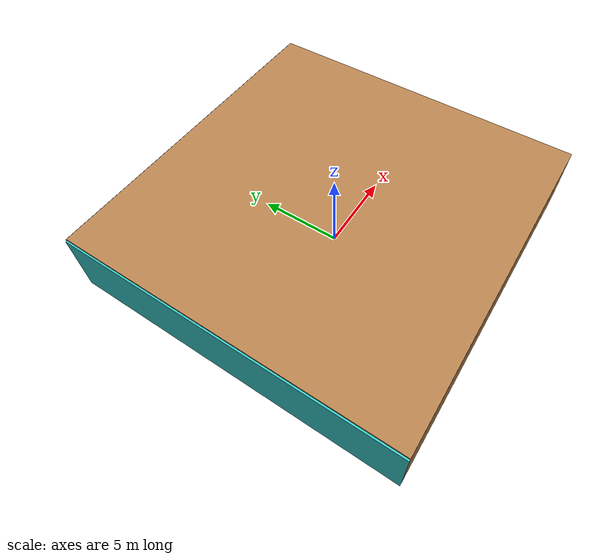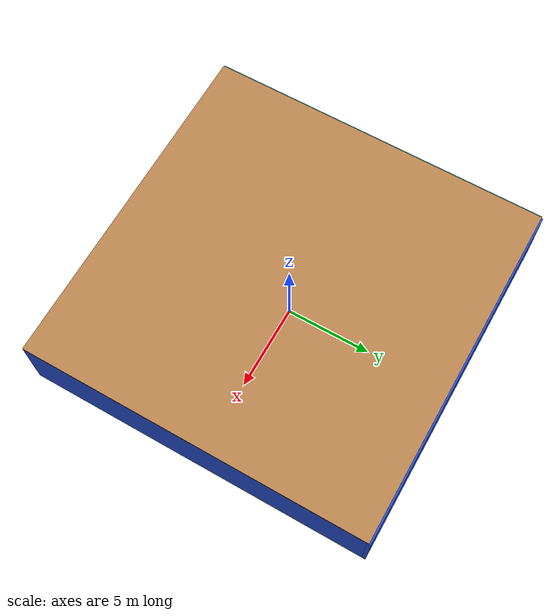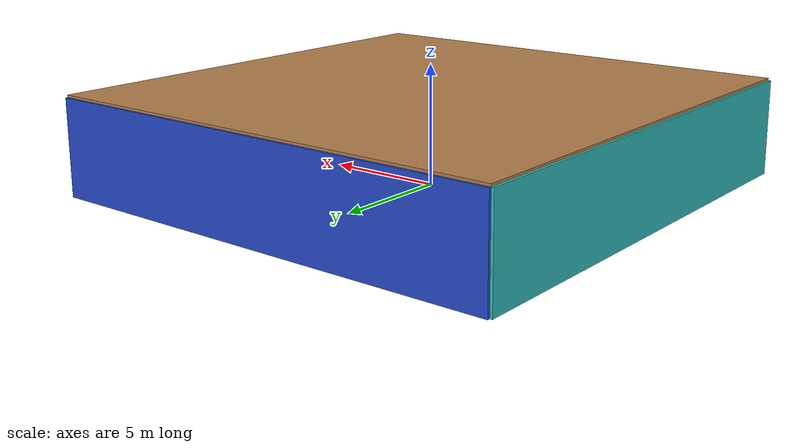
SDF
<sdf version="1.4">
 <world name="default">
  <physics type="ode">
   <max_step_size>0.001</max_step_size>
   <real_time_factor>1</real_time_factor>
   <real_time_update_rate>1000</real_time_update_rate>
   <gravity>0 0 -9.8</gravity>
  </physics>
  <scene><ambient>0.4 0.4 0.4 1</ambient><background>0.7 0.7 0.7 1</background><shadows>1</shadows></scene>
  <model name="Surrounding">
   <static>1</static>
   <link name="Ceiling">
    <collision name="Ceiling_Collision"><geometry><box><size>20 20 0.1</size></box></geometry></collision>
    <visual name="Ceiling_Visual">
     <geometry><box><size>20 20 0.1</size></box></geometry>
     <material>
      <script><uri>file://media/materials/scripts/gazebo.material</uri><name>Gazebo/WoodPallet</name></script>
     </material>
    </visual>
    <pose>0 0 4.05 0 0 0</pose>
   </link>
   <link name="Wall_South">
    <collision name="Wall_South_Collision">
     <geometry><box><size>20 0 4</size></box></geometry>
     <pose>0 0 2 0 -0 0</pose>
    </collision>
    <visual name="Wall_South_Visual">
     <pose>0 0 2 0 -0 0</pose>
     <geometry><box><size>20 0 4</size></box></geometry>
     <material>
      <script><uri>file://media/materials/scripts/gazebo.material</uri><name>Gazebo/WoodFloor</name></script>
     </material>
    </visual>
    <velocity_decay><linear>0</linear><angular>0</angular></velocity_decay>
    <pose>0 -10 0 0 -0 0</pose>
   </link>
   <link name="Wall_East">
    <collision name="Wall_21_Collision">
     <geometry><box><size>20 0 4</size></box></geometry>
     <pose>0 0 2 0 -0 0</pose>
    </collision>
    <visual name="Wall_21_Visual">
     <pose>0 0 2 0 -0 0</pose>
     <geometry><box><size>20 0 4</size></box></geometry>
     <material>
      <script><uri>file://media/materials/scripts/gazebo.material</uri><name>Gazebo/BlueGlow</name></script>
     </material>
    </visual>
    <velocity_decay><linear>0</linear><angular>0</angular></velocity_decay>
    <pose>10 0 0 0 -0 1.5708</pose>
   </link>
   <link name="Wall_North">
    <collision name="Wall_22_Collision">
     <geometry><box><size>20 0.2 4</size></box></geometry>
     <pose>0 0 2 0 -0 0</pose>
    </collision>
    <visual name="Wall_22_Visual">
     <pose>0 0 2 0 -0 0</pose>
     <geometry><box><size>20 0.2 4</size></box></geometry>
     <material>
      <script><uri>file://media/materials/scripts/gazebo.material</uri><name>Gazebo/Blue</name></script>
     </material>
    </visual>
    <velocity_decay><linear>0</linear><angular>0</angular></velocity_decay>
    <pose>0 10 0 0 -0 0</pose>
   </link>
   <link name="Wall_West">
    <collision name="Wall_23_Collision">
     <geometry><box><size>20 0.2 4</size></box></geometry>
     <pose>0 0 2 0 -0 0</pose>
    </collision>
    <visual name="Wall_23_Visual">
     <pose>0 0 2 0 -0 0</pose>
     <geometry><box><size>20 0.2 4</size></box></geometry>
     <material>
      <script>
       <uri>file://media/materials/scripts/gazebo.material</uri>
       <name>Gazebo/TurquoiseGlowOutline</name>
      </script>
     </material>
    </visual>
    <velocity_decay><linear>0</linear><angular>0</angular></velocity_decay>
    <pose>-10 0 0 0 0 -1.5708</pose>
   </link>
   <link name="Ground_link">
    <collision name="collision">
     <pose>0 0 .05 0 -0 0</pose>
     <geometry><box><size>20 20 0.1</size></box></geometry>
    </collision>
    <visual name="visual">
     <pose>0 0 .05 0 -0 0</pose>
     <geometry><box><size>20 20 0.1</size></box></geometry>
     <material>
      <script><uri>file://media/materials/scripts/gazebo.material</uri><name>Gazebo/FlatBlack</name></script>
     </material>
    </visual>
   </link>
   <static>1</static>
  </model>
  <spherical_coordinates>
   <surface_model>EARTH_WGS84</surface_model>
   <latitude_deg>0</latitude_deg>
   <longitude_deg>0</longitude_deg>
   <elevation>0</elevation>
   <heading_deg>0</heading_deg>
  </spherical_coordinates>
  <light name="lightball_0" type="diffuse">
   <diffuse>0.8 0.8 0.8 1</diffuse>
   <specular>0.2 0.2 0.2 1</specular>
   <attenuation>
    <range>100</range>
    <constant>0.7</constant>
    <linear>0.01</linear>
    <quadratic>0.001</quadratic>
   </attenuation>
   <direction>-0.5 0.1 -0.9</direction>
   <pose>6.29246132997 9.76273060771 0.519138506021 0 0 0</pose>
  </light>
  <light name="lightball_1" type="diffuse">
   <diffuse>0.8 0.8 0.8 1</diffuse>
   <specular>0.2 0.2 0.2 1</specular>
   <attenuation>
    <range>100</range>
    <constant>0.7</constant>
    <linear>0.01</linear>
    <quadratic>0.001</quadratic>
   </attenuation>
   <direction>-0.5 0.1 -0.9</direction>
   <pose>0.607991973183 5.60154290386 0.685482212117 0 0 0</pose>
  </light>
  <light name="lightball_2" type="diffuse">
   <diffuse>0.8 0.8 0.8 1</diffuse>
   <specular>0.2 0.2 0.2 1</specular>
   <attenuation>
    <range>100</range>
    <constant>0.7</constant>
    <linear>0.01</linear>
    <quadratic>0.001</quadratic>
   </attenuation>
   <direction>-0.5 0.1 -0.9</direction>
   <pose>3.70988913448 -4.57422659871 2.459404421 0 0 0</pose>
  </light>
  <light name="lightball_3" type="diffuse">
   <diffuse>0.8 0.8 0.8 1</diffuse>
   <specular>0.2 0.2 0.2 1</specular>
   <attenuation>
    <range>100</range>
    <constant>0.7</constant>
    <linear>0.01</linear>
    <quadratic>0.001</quadratic>
   </attenuation>
   <direction>-0.5 0.1 -0.9</direction>
   <pose>7.20158664912 -4.863478092 1.0339835601 0 0 0</pose>
  </light>
  <light name="lightball_4" type="diffuse">
   <diffuse>0.8 0.8 0.8 1</diffuse>
   <specular>0.2 0.2 0.2 1</specular>
   <attenuation>
    <range>100</range>
    <constant>0.7</constant>
    <linear>0.01</linear>
    <quadratic>0.001</quadratic>
   </attenuation>
   <direction>-0.5 0.1 -0.9</direction>
   <pose>-0.905213392009 -9.28576064352 2.30987244154 0 0 0</pose>
  </light>
  <light name="lightball_5" type="diffuse">
   <diffuse>0.8 0.8 0.8 1</diffuse>
   <specular>0.2 0.2 0.2 1</specular>
   <attenuation>
    <range>100</range>
    <constant>0.7</constant>
    <linear>0.01</linear>
    <quadratic>0.001</quadratic>
   </attenuation>
   <direction>-0.5 0.1 -0.9</direction>
   <pose>5.18457334958 -4.6355720779 1.51825582704 0 0 0</pose>
  </light>
  <light name="lightball_6" type="diffuse">
   <diffuse>0.8 0.8 0.8 1</diffuse>
   <specular>0.2 0.2 0.2 1</specular>
   <attenuation>
    <range>100</range>
    <constant>0.7</constant>
    <linear>0.01</linear>
    <quadratic>0.001</quadratic>
   </attenuation>
   <direction>-0.5 0.1 -0.9</direction>
   <pose>-8.40133762191 3.28219100596 0.791116291665 0 0 0</pose>
  </light>
  <light name="lightball_7" type="diffuse">
   <diffuse>0.8 0.8 0.8 1</diffuse>
   <specular>0.2 0.2 0.2 1</specular>
   <attenuation>
    <range>100</range>
    <constant>0.7</constant>
    <linear>0.01</linear>
    <quadratic>0.001</quadratic>
   </attenuation>
   <direction>-0.5 0.1 -0.9</direction>
   <pose>-9.97697000659 0.715308653252 2.36939600496 0 0 0</pose>
  </light>
  <light name="lightball_8" type="diffuse">
   <diffuse>0.8 0.8 0.8 1</diffuse>
   <specular>0.2 0.2 0.2 1</specular>
   <attenuation>
    <range>100</range>
    <constant>0.7</constant>
    <linear>0.01</linear>
    <quadratic>0.001</quadratic>
   </attenuation>
   <direction>-0.5 0.1 -0.9</direction>
   <pose>0.790500471671 -6.41325111574 2.11800996155 0 0 0</pose>
  </light>
  <light name="lightball_9" type="diffuse">
   <diffuse>0.8 0.8 0.8 1</diffuse>
   <specular>0.2 0.2 0.2 1</specular>
   <attenuation>
    <range>100</range>
    <constant>0.7</constant>
    <linear>0.01</linear>
    <quadratic>0.001</quadratic>
   </attenuation>
   <direction>-0.5 0.1 -0.9</direction>
   <pose>-8.92975667922 -9.86668154811 0.605578594351 0 0 0</pose>
  </light>
  <light name="lightball_10" type="diffuse">
   <diffuse>0.8 0.8 0.8 1</diffuse>
   <specular>0.2 0.2 0.2 1</specular>
   <attenuation>
    <range>100</range>
    <constant>0.7</constant>
    <linear>0.01</linear>
    <quadratic>0.001</quadratic>
   </attenuation>
   <direction>-0.5 0.1 -0.9</direction>
   <pose>2.85816531439 -3.61388024601 2.70025666457 0 0 0</pose>
  </light>
  <light name="lightball_11" type="diffuse">
   <diffuse>0.8 0.8 0.8 1</diffuse>
   <specular>0.2 0.2 0.2 1</specular>
   <attenuation>
    <range>100</range>
    <constant>0.7</constant>
    <linear>0.01</linear>
    <quadratic>0.001</quadratic>
   </attenuation>
   <direction>-0.5 0.1 -0.9</direction>
   <pose>4.32417781492 -1.41598256763 0.589031605813 0 0 0</pose>
  </light>
  <light name="lightball_12" type="diffuse">
   <diffuse>0.8 0.8 0.8 1</diffuse>
   <specular>0.2 0.2 0.2 1</specular>
   <attenuation>
    <range>100</range>
    <constant>0.7</constant>
    <linear>0.01</linear>
    <quadratic>0.001</quadratic>
   </attenuation>
   <direction>-0.5 0.1 -0.9</direction>
   <pose>3.59316412923 6.35685828711 2.18047472072 0 0 0</pose>
  </light>
  <include><uri>model://cabinet</uri><pose>-6.81527277595 -3.3734858823 0 0 0 0.384921870378</pose></include>
  <include><uri>model://cabinet</uri><pose>-3.72500094813 -8.21817857928 0 0 0 0.740652688577</pose></include>
  <include>
   <uri>model://construction_cone</uri>
   <pose>0.443066665073 -3.49874117067 0 0 0 0.478534441553</pose>
  </include>
  <include><uri>model://cabinet</uri><pose>5.32431794011 0.408047589019 0 0 0 0.785362675419</pose></include>
  <include>
   <uri>model://robocup_3Dsim_goal</uri>
   <pose>7.21455458421 -6.8542288336 0 0 0 2.51414853558</pose>
  </include>
 </world>
</sdf>

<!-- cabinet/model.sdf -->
<sdf version="1.5">
  <model name="cabinet">
    <static>true</static>
    <link name="cabinet_bottom_plate">
      <inertial>
        <pose>0 0 -1 0 0 0</pose>
        <inertia>
          <ixx>2.050000</ixx>
          <ixy>0</ixy>
          <ixz>0</ixz>
          <iyy>2.050000</iyy>
          <iyz>0</iyz>
          <izz>2.050000</izz>
        </inertia>
        <mass>25.000000</mass>
      </inertial>
      <collision name="cabinet_bottom_plate_geom">
        <pose>0 0 0.010000 0 0 0</pose>
        <geometry>
          <box>
            <size>0.450000 0.450000 0.020000</size>
          </box>
        </geometry>
      </collision>
      <visual name="cabinet_bottom_plate_geom_visual">
        <pose>0 0 0.010000 0 0 0</pose>
        <geometry>
          <box>
            <size>0.450000 0.450000 0.020000</size>
          </box>
        </geometry>
        <material>
          <script>
            <uri>model://media/materials/scripts/gazebo.material</uri>
            <name>Gazebo/Wood</name>
          </script>
        </material>
      </visual>
      <collision name="cabinet_bottom_plate_geom_cabinet_back_plate">
        <pose>0.235000 0 0.510000 0 0 0</pose>
        <geometry>
          <box>
            <size>0.020000 0.450000 1.020000</size>
          </box>
        </geometry>
      </collision>
      <visual name="cabinet_bottom_plate_geom_cabinet_back_plate_visual">
        <pose>0.235000 0 0.510000 0 0 0</pose>
        <geometry>
          <box>
            <size>0.020000 0.450000 1.020000</size>
          </box>
        </geometry>
        <material>
          <script>
            <uri>model://media/materials/scripts/gazebo.material</uri>
            <name>Gazebo/Wood</name>
          </script>
        </material>
      </visual>
      <collision name="cabinet_bottom_plate_geom_cabinet_left_plate">
        <pose>0 0.235000 0.510000 0 0 0</pose>
        <geometry>
          <box>
            <size>0.450000 0.020000 1.020000</size>
          </box>
        </geometry>
      </collision>
      <visual name="cabinet_bottom_plate_geom_cabinet_left_plate_visual">
        <pose>0 0.235000 0.510000 0 0 0</pose>
        <geometry>
          <box>
            <size>0.450000 0.020000 1.020000</size>
          </box>
        </geometry>
        <material>
          <script>
            <uri>model://media/materials/scripts/gazebo.material</uri>
            <name>Gazebo/Wood</name>
          </script>
        </material>
      </visual>
      <collision name="cabinet_bottom_plate_geom_cabinet_middle_plate">
        <pose>0 0 0.510000 0 0 0</pose>
        <geometry>
          <box>
            <size>0.450000 0.450000 0.020000</size>
          </box>
        </geometry>
      </collision>
      <visual name="cabinet_bottom_plate_geom_cabinet_middle_plate_visual">
        <pose>0 0 0.510000 0 0 0</pose>
        <geometry>
          <box>
            <size>0.450000 0.450000 0.020000</size>
          </box>
        </geometry>
        <material>
          <script>
            <uri>model://media/materials/scripts/gazebo.material</uri>
            <name>Gazebo/Wood</name>
          </script>
        </material>
      </visual>
      <collision name="cabinet_bottom_plate_geom_cabinet_right_plate">
        <pose>0 -0.235000 0.510000 0 0 0</pose>
        <geometry>
          <box>
            <size>0.450000 0.020000 1.020000</size>
          </box>
        </geometry>
      </collision>
      <visual name="cabinet_bottom_plate_geom_cabinet_right_plate_visual">
        <pose>0 -0.235000 0.510000 0 0 0</pose>
        <geometry>
          <box>
            <size>0.450000 0.020000 1.020000</size>
          </box>
        </geometry>
        <material>
          <script>
            <uri>model://media/materials/scripts/gazebo.material</uri>
            <name>Gazebo/Wood</name>
          </script>
        </material>
      </visual>
      <collision name="cabinet_bottom_plate_geom_cabinet_top_plate">
        <pose>0 0 1.010000 0 0 0</pose>
        <geometry>
          <box>
            <size>0.450000 0.450000 0.020000</size>
          </box>
        </geometry>
      </collision>
      <visual name="cabinet_bottom_plate_geom_cabinet_top_plate_visual">
        <pose>0 0 1.010000 0 0 0</pose>
        <geometry>
          <box>
            <size>0.450000 0.450000 0.020000</size>
          </box>
        </geometry>
        <material>
          <script>
            <uri>model://media/materials/scripts/gazebo.material</uri>
            <name>Gazebo/Wood</name>
          </script>
        </material>
      </visual>
    </link>
  </model>
</sdf>

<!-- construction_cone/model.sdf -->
<sdf version="1.5">
  <model name="Construction Cone">
    <link name="link">
      <collision name="collision">
        <geometry>
          <mesh>
            <scale>10 10 10</scale>
            <uri>file://isr-testbed/construction_cone/meshes/construction_cone.dae</uri>
          </mesh>
        </geometry>
      </collision>
      <visual name="visual">
        <geometry>
          <mesh>
            <scale>10 10 10</scale>
            <uri>file://isr-testbed/construction_cone/meshes/construction_cone.dae</uri>
          </mesh>
        </geometry>
      </visual>
    </link>
  </model>
</sdf>

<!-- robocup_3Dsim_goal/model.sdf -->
<sdf version="1.5">
  <model name="robocup_3d_goal">
    <static>true</static>
    <link name="left_post">
      <pose>0 1.05 0.45 0 0 0</pose>
      <collision name="collision">
        <geometry>
          <cylinder>
            <radius>0.05</radius>
            <length>0.9</length>
          </cylinder>
        </geometry>
      </collision>
      <visual name="visual">
        <geometry>
          <cylinder>
            <radius>0.05</radius>
            <length>0.9</length>
          </cylinder>
        </geometry>
        <material>
          <script>
            <uri>file://media/materials/scripts/gazebo.material</uri>
            <name>Gazebo/ZincYellow</name>
          </script>
        </material>
      </visual>
    </link>
    <link name="left_support_horiz_lower">
      <pose>0.30 1.05 0.01 0 0 0</pose>
      <collision name="collision">
        <geometry>
          <box>
            <size>0.50 0.02 0.02</size>
          </box>
        </geometry>
      </collision>
      <visual name="visual">
        <geometry>
          <box>
            <size>0.50 0.02 0.02</size>
          </box>
        </geometry>
        <material>
          <script>
            <uri>file://media/materials/scripts/gazebo.material</uri>
            <name>Gazebo/White</name>
          </script>
        </material>
      </visual>
    </link>
    <link name="left_support_horiz_upper">
      <pose>0.30 1.05 0.79 0 0 0</pose>
      <collision name="collision">
        <geometry>
          <box>
            <size>0.50 0.02 0.02</size>
          </box>
        </geometry>
      </collision>
      <visual name="visual">
        <geometry>
          <box>
            <size>0.50 0.02 0.02</size>
          </box>
        </geometry>
        <material>
          <script>
            <uri>file://media/materials/scripts/gazebo.material</uri>
            <name>Gazebo/White</name>
          </script>
        </material>
      </visual>
    </link>
    <link name="left_support_vertical">
      <pose>0.56 1.05 0.4 0 1.5708 0</pose>
      <collision name="collision">
        <geometry>
          <box>
            <size>0.80 0.02 0.02</size>
          </box>
        </geometry>
      </collision>
      <visual name="visual">
        <geometry>
          <box>
            <size>0.80 0.02 0.02</size>
          </box>
        </geometry>
        <material>
          <script>
            <uri>file://media/materials/scripts/gazebo.material</uri>
            <name>Gazebo/White</name>
          </script>
        </material>
      </visual>
    </link>
    <link name="right_support_horiz_lower">
      <pose>0.30 -1.05 0.01 0 0 0</pose>
      <collision name="collision">
        <geometry>
          <box>
            <size>0.50 0.02 0.02</size>
          </box>
        </geometry>
      </collision>
      <visual name="visual">
        <geometry>
          <box>
            <size>0.50 0.02 0.02</size>
          </box>
        </geometry>
        <material>
          <script>
            <uri>file://media/materials/scripts/gazebo.material</uri>
            <name>Gazebo/White</name>
          </script>
        </material>
      </visual>
    </link>
    <link name="right_support_horiz_upper">
      <pose>0.30 -1.05 0.79 0 0 0</pose>
      <collision name="collision">
        <geometry>
          <box>
            <size>0.50 0.02 0.02</size>
          </box>
        </geometry>
      </collision>
      <visual name="visual">
        <geometry>
          <box>
            <size>0.50 0.02 0.02</size>
          </box>
        </geometry>
        <material>
          <script>
            <uri>file://media/materials/scripts/gazebo.material</uri>
            <name>Gazebo/White</name>
          </script>
        </material>
      </visual>
    </link>
    <link name="right_support_vertical">
      <pose>0.56 -1.05 0.4 0 1.5708 0</pose>
      <collision name="collision">
        <geometry>
          <box>
            <size>0.80 0.02 0.02</size>
          </box>
        </geometry>
      </collision>
      <visual name="visual">
        <geometry>
          <box>
            <size>0.80 0.02 0.02</size>
          </box>
        </geometry>
        <material>
          <script>
            <uri>file://media/materials/scripts/gazebo.material</uri>
            <name>Gazebo/White</name>
          </script>
        </material>
      </visual>
    </link>
    <link name="center_support_horiz_lower">
      <pose>0.56 0 0.01 0 1.5708 0</pose>
      <collision name="collision">
        <geometry>
          <box>
            <size>0.02 2.08 0.02</size>
          </box>
        </geometry>
      </collision>
      <visual name="visual">
        <geometry>
          <box>
            <size>0.02 2.08 0.02</size>
          </box>
        </geometry>
        <material>
          <script>
            <uri>file://media/materials/scripts/gazebo.material</uri>
            <name>Gazebo/White</name>
          </script>
        </material>
      </visual>
    </link>
    <link name="center_support_horiz_upper">
      <pose>0.56 0 0.79 0 1.5708 0</pose>
      <collision name="collision">
        <geometry>
          <box>
            <size>0.02 2.08 0.02</size>
          </box>
        </geometry>
      </collision>
      <visual name="visual">
        <geometry>
          <box>
            <size>0.02 2.08 0.02</size>
          </box>
        </geometry>
        <material>
          <script>
            <uri>file://media/materials/scripts/gazebo.material</uri>
            <name>Gazebo/White</name>
          </script>
        </material>
      </visual>
    </link>
    <link name="right_post">
      <pose>0 -1.05 0.45 0 0 0</pose>
      <collision name="collision">
        <geometry>
          <cylinder>
            <radius>0.05</radius>
            <length>0.9</length>
          </cylinder>
        </geometry>
      </collision>
      <visual name="visual">
        <geometry>
          <cylinder>
            <radius>0.05</radius>
            <length>0.9</length>
          </cylinder>
        </geometry>
        <material>
          <script>
            <uri>file://media/materials/scripts/gazebo.material</uri>
            <name>Gazebo/ZincYellow</name>
          </script>
        </material>
      </visual>
    </link>
    <link name="crossbar">
      <pose>0 0 0.85 1.57 1.57 0</pose>
      <collision name="collision">
        <geometry>
          <cylinder>
            <radius>0.05</radius>
            <length>2.0</length>
          </cylinder>
        </geometry>
      </collision>
      <visual name="visual">
        <geometry>
          <cylinder>
            <radius>0.05</radius>
            <length>2.0</length>
          </cylinder>
        </geometry>
        <material>
          <script>
            <uri>file://media/materials/scripts/gazebo.material</uri>
            <name>Gazebo/ZincYellow</name>
          </script>
        </material>
      </visual>
    </link>
    <link name="center_net">
      <pose>0.56 0 0.40 0 0 0</pose>
      <collision name="collision">
        <geometry>
          <box>
            <size>0.01 2.1 0.80</size>
          </box>
        </geometry>
      </collision>
      <visual name="visual">
        <geometry>
          <box>
            <size>0.01 2.1 0.80</size>
          </box>
        </geometry>
        <material>
          <script>
            <uri>model://../model_source/models/robocup09_spl_field/materials/scripts/</uri>
            <uri>model://../model_source/models/robocup09_spl_field/materials/textures/</uri>
            <name>RoboCup/Net</name>
          </script>
        </material>
      </visual>
    </link>
    <link name="left_net">
      <pose>0.30 1.05 0.40 0 0 0</pose>
      <collision name="collision">
        <geometry>
          <box>
            <size>0.50 0.01 0.76</size>
          </box>
        </geometry>
      </collision>
      <visual name="visual">
        <geometry>
          <box>
            <size>0.50 0.01 0.76</size>
          </box>
        </geometry>
        <material>
          <script>
            <uri>model://../model_source/models/robocup09_spl_field/materials/scripts/</uri>
            <uri>model://../model_source/models/robocup09_spl_field/materials/textures/</uri>
            <name>RoboCup/Net</name>
          </script>
        </material>
      </visual>
    </link>
    <link name="right_net">
      <pose>0.30 -1.05 0.40 0 0 0</pose>
      <collision name="collision">
        <geometry>
          <box>
            <size>0.50 0.01 0.76</size>
          </box>
        </geometry>
      </collision>
      <visual name="visual">
        <geometry>
          <box>
            <size>0.50 0.01 0.76</size>
          </box>
        </geometry>
        <material>
          <script>
            <uri>model://../model_source/models/robocup09_spl_field/materials/scripts/</uri>
            <uri>model://../model_source/models/robocup09_spl_field/materials/textures/</uri>
            <name>RoboCup/Net</name>
          </script>
        </material>
      </visual>
    </link>
  </model>
</sdf>
